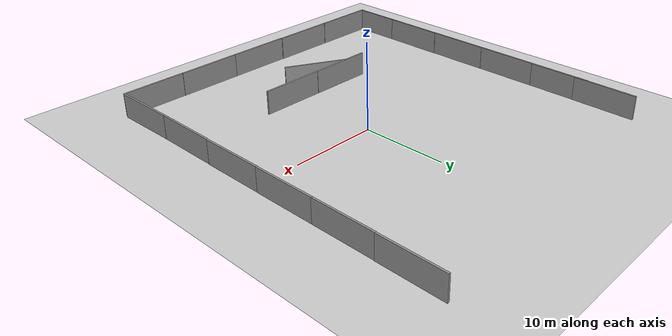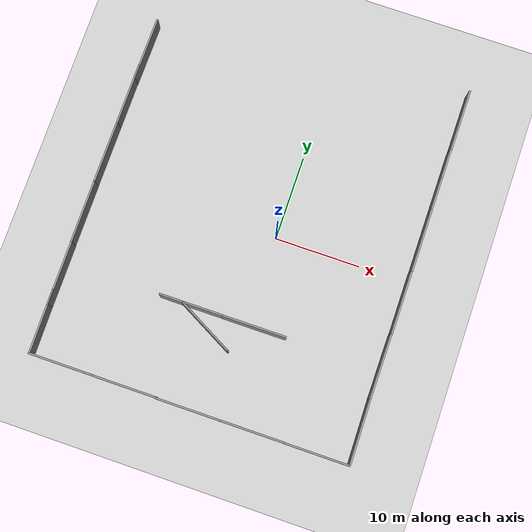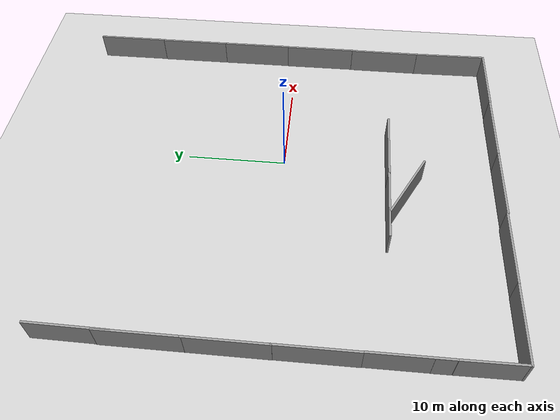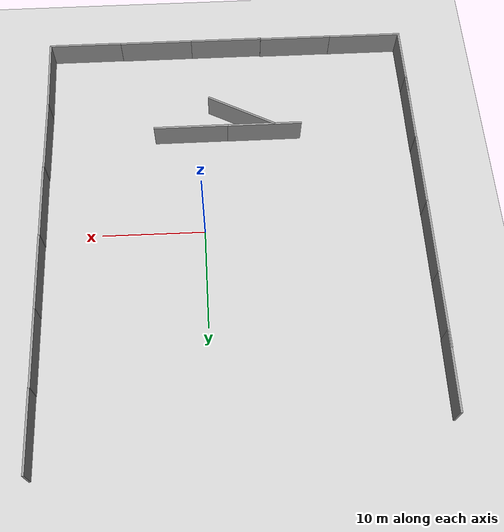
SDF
<sdf version="1.4">
 <world name="default">
  <model name="ground_plane">
   <static>1</static>
   <link name="link">
    <collision name="collision">
     <geometry><plane><normal>0 0 1</normal><size>100 100</size></plane></geometry>
     <surface><friction><ode><mu>100</mu><mu2>50</mu2></ode></friction></surface>
    </collision>
    <visual name="visual">
     <cast_shadows>0</cast_shadows>
     <geometry><plane><normal>0 0 1</normal><size>100 100</size></plane></geometry>
     <material>
      <script><uri>file://media/materials/scripts/gazebo.material</uri><name>Gazebo/Grey</name></script>
     </material>
    </visual>
    <velocity_decay><linear>0</linear><angular>0</angular></velocity_decay>
   </link>
  </model>
  <model name="grey_wall_0">
   <static>1</static>
   <link name="link">
    <pose>0 0 1.4 0 -0 0</pose>
    <collision name="collision"><geometry><box><size>7.5 0.2 2.8</size></box></geometry></collision>
    <visual name="visual">
     <cast_shadows>0</cast_shadows>
     <geometry><box><size>7.5 0.2 2.8</size></box></geometry>
     <material>
      <script>
       <uri>model://grey_wall/materials/scripts</uri>
       <uri>model://grey_wall/materials/textures</uri>
       <name>vrc/grey_wall</name>
      </script>
     </material>
    </visual>
    <velocity_decay><linear>0</linear><angular>0</angular></velocity_decay>
   </link>
   <pose>11.9495 -21.5417 0 0 -0 0</pose>
  </model>
  <model name="grey_wall_1">
   <static>1</static>
   <link name="link">
    <pose>0 0 1.4 0 -0 0</pose>
    <collision name="collision"><geometry><box><size>7.5 0.2 2.8</size></box></geometry></collision>
    <visual name="visual">
     <cast_shadows>0</cast_shadows>
     <geometry><box><size>7.5 0.2 2.8</size></box></geometry>
     <material>
      <script>
       <uri>model://grey_wall/materials/scripts</uri>
       <uri>model://grey_wall/materials/textures</uri>
       <name>vrc/grey_wall</name>
      </script>
     </material>
    </visual>
    <velocity_decay><linear>0</linear><angular>0</angular></velocity_decay>
   </link>
   <pose>4.46115 -21.5125 0 0 -0 0</pose>
  </model>
  <model name="grey_wall_2">
   <static>1</static>
   <link name="link">
    <pose>0 0 1.4 0 -0 0</pose>
    <collision name="collision"><geometry><box><size>7.5 0.2 2.8</size></box></geometry></collision>
    <visual name="visual">
     <cast_shadows>0</cast_shadows>
     <geometry><box><size>7.5 0.2 2.8</size></box></geometry>
     <material>
      <script>
       <uri>model://grey_wall/materials/scripts</uri>
       <uri>model://grey_wall/materials/textures</uri>
       <name>vrc/grey_wall</name>
      </script>
     </material>
    </visual>
    <velocity_decay><linear>0</linear><angular>0</angular></velocity_decay>
   </link>
   <pose>-3 -21.5146 0 0 -0 0</pose>
  </model>
  <model name="grey_wall_3">
   <static>1</static>
   <link name="link">
    <pose>0 0 1.4 0 -0 0</pose>
    <collision name="collision"><geometry><box><size>7.5 0.2 2.8</size></box></geometry></collision>
    <visual name="visual">
     <cast_shadows>0</cast_shadows>
     <geometry><box><size>7.5 0.2 2.8</size></box></geometry>
     <material>
      <script>
       <uri>model://grey_wall/materials/scripts</uri>
       <uri>model://grey_wall/materials/textures</uri>
       <name>vrc/grey_wall</name>
      </script>
     </material>
    </visual>
    <velocity_decay><linear>0</linear><angular>0</angular></velocity_decay>
   </link>
   <pose>-10.457 -21.4428 0 0 -0 0</pose>
  </model>
  <model name="grey_wall_4">
   <static>1</static>
   <link name="link">
    <pose>0 0 1.4 0 -0 0</pose>
    <collision name="collision"><geometry><box><size>7.5 0.2 2.8</size></box></geometry></collision>
    <visual name="visual">
     <cast_shadows>0</cast_shadows>
     <geometry><box><size>7.5 0.2 2.8</size></box></geometry>
     <material>
      <script>
       <uri>model://grey_wall/materials/scripts</uri>
       <uri>model://grey_wall/materials/textures</uri>
       <name>vrc/grey_wall</name>
      </script>
     </material>
    </visual>
    <velocity_decay><linear>0</linear><angular>0</angular></velocity_decay>
   </link>
   <pose>-17.8741 -21.4252 0 0 -0 0</pose>
  </model>
  <model name="grey_wall_6">
   <static>1</static>
   <link name="link">
    <pose>0 0 1.4 0 -0 0</pose>
    <collision name="collision"><geometry><box><size>7.5 0.2 2.8</size></box></geometry></collision>
    <visual name="visual">
     <cast_shadows>0</cast_shadows>
     <geometry><box><size>7.5 0.2 2.8</size></box></geometry>
     <material>
      <script>
       <uri>model://grey_wall/materials/scripts</uri>
       <uri>model://grey_wall/materials/textures</uri>
       <name>vrc/grey_wall</name>
      </script>
     </material>
    </visual>
    <velocity_decay><linear>0</linear><angular>0</angular></velocity_decay>
   </link>
   <pose>15.6069 -17.7328 0 0 -0 1.58364</pose>
  </model>
  <model name="grey_wall_7">
   <static>1</static>
   <link name="link">
    <pose>0 0 1.4 0 -0 0</pose>
    <collision name="collision"><geometry><box><size>7.5 0.2 2.8</size></box></geometry></collision>
    <visual name="visual">
     <cast_shadows>0</cast_shadows>
     <geometry><box><size>7.5 0.2 2.8</size></box></geometry>
     <material>
      <script>
       <uri>model://grey_wall/materials/scripts</uri>
       <uri>model://grey_wall/materials/textures</uri>
       <name>vrc/grey_wall</name>
      </script>
     </material>
    </visual>
    <velocity_decay><linear>0</linear><angular>0</angular></velocity_decay>
   </link>
   <pose>15.5792 -10.2805 0 0 0 -1.5757</pose>
  </model>
  <model name="grey_wall_8">
   <static>1</static>
   <link name="link">
    <pose>0 0 1.4 0 -0 0</pose>
    <collision name="collision"><geometry><box><size>7.5 0.2 2.8</size></box></geometry></collision>
    <visual name="visual">
     <cast_shadows>0</cast_shadows>
     <geometry><box><size>7.5 0.2 2.8</size></box></geometry>
     <material>
      <script>
       <uri>model://grey_wall/materials/scripts</uri>
       <uri>model://grey_wall/materials/textures</uri>
       <name>vrc/grey_wall</name>
      </script>
     </material>
    </visual>
    <velocity_decay><linear>0</linear><angular>0</angular></velocity_decay>
   </link>
   <pose>15.6357 -2.80636 0 0 0 -1.57048</pose>
  </model>
  <model name="grey_wall_9">
   <static>1</static>
   <link name="link">
    <pose>0 0 1.4 0 -0 0</pose>
    <collision name="collision"><geometry><box><size>7.5 0.2 2.8</size></box></geometry></collision>
    <visual name="visual">
     <cast_shadows>0</cast_shadows>
     <geometry><box><size>7.5 0.2 2.8</size></box></geometry>
     <material>
      <script>
       <uri>model://grey_wall/materials/scripts</uri>
       <uri>model://grey_wall/materials/textures</uri>
       <name>vrc/grey_wall</name>
      </script>
     </material>
    </visual>
    <velocity_decay><linear>0</linear><angular>0</angular></velocity_decay>
   </link>
   <pose>15.6626 4.62392 0 0 0 -1.57072</pose>
  </model>
  <model name="grey_wall_10">
   <static>1</static>
   <link name="link">
    <pose>0 0 1.4 0 -0 0</pose>
    <collision name="collision"><geometry><box><size>7.5 0.2 2.8</size></box></geometry></collision>
    <visual name="visual">
     <cast_shadows>0</cast_shadows>
     <geometry><box><size>7.5 0.2 2.8</size></box></geometry>
     <material>
      <script>
       <uri>model://grey_wall/materials/scripts</uri>
       <uri>model://grey_wall/materials/textures</uri>
       <name>vrc/grey_wall</name>
      </script>
     </material>
    </visual>
    <velocity_decay><linear>0</linear><angular>0</angular></velocity_decay>
   </link>
   <pose>15.665 11.9925 -0 0 0 -1.57143</pose>
  </model>
  <model name="grey_wall_13">
   <static>1</static>
   <link name="link">
    <pose>0 0 1.4 0 -0 0</pose>
    <collision name="collision"><geometry><box><size>7.5 0.2 2.8</size></box></geometry></collision>
    <visual name="visual">
     <cast_shadows>0</cast_shadows>
     <geometry><box><size>7.5 0.2 2.8</size></box></geometry>
     <material>
      <script>
       <uri>model://grey_wall/materials/scripts</uri>
       <uri>model://grey_wall/materials/textures</uri>
       <name>vrc/grey_wall</name>
      </script>
     </material>
    </visual>
    <velocity_decay><linear>0</linear><angular>0</angular></velocity_decay>
   </link>
   <pose>15.7093 19.4176 0 0 0 -1.57249</pose>
  </model>
  <model name="grey_wall_15">
   <static>1</static>
   <link name="link">
    <pose>0 0 1.4 0 -0 0</pose>
    <collision name="collision"><geometry><box><size>7.5 0.2 2.8</size></box></geometry></collision>
    <visual name="visual">
     <cast_shadows>0</cast_shadows>
     <geometry><box><size>7.5 0.2 2.8</size></box></geometry>
     <material>
      <script>
       <uri>model://grey_wall/materials/scripts</uri>
       <uri>model://grey_wall/materials/textures</uri>
       <name>vrc/grey_wall</name>
      </script>
     </material>
    </visual>
    <velocity_decay><linear>0</linear><angular>0</angular></velocity_decay>
   </link>
   <pose>-21.5248 -17.7015 0 0 0 -1.56656</pose>
  </model>
  <model name="grey_wall_16">
   <static>1</static>
   <link name="link">
    <pose>0 0 1.4 0 -0 0</pose>
    <collision name="collision"><geometry><box><size>7.5 0.2 2.8</size></box></geometry></collision>
    <visual name="visual">
     <cast_shadows>0</cast_shadows>
     <geometry><box><size>7.5 0.2 2.8</size></box></geometry>
     <material>
      <script>
       <uri>model://grey_wall/materials/scripts</uri>
       <uri>model://grey_wall/materials/textures</uri>
       <name>vrc/grey_wall</name>
      </script>
     </material>
    </visual>
    <velocity_decay><linear>0</linear><angular>0</angular></velocity_decay>
   </link>
   <pose>-21.5208 -12 0 0 0 -1.57415</pose>
  </model>
  <model name="grey_wall_17">
   <static>1</static>
   <link name="link">
    <pose>0 0 1.4 0 -0 0</pose>
    <collision name="collision"><geometry><box><size>7.5 0.2 2.8</size></box></geometry></collision>
    <visual name="visual">
     <cast_shadows>0</cast_shadows>
     <geometry><box><size>7.5 0.2 2.8</size></box></geometry>
     <material>
      <script>
       <uri>model://grey_wall/materials/scripts</uri>
       <uri>model://grey_wall/materials/textures</uri>
       <name>vrc/grey_wall</name>
      </script>
     </material>
    </visual>
    <velocity_decay><linear>0</linear><angular>0</angular></velocity_decay>
   </link>
   <pose>-21.5209 -4.59777 0 0 0 -1.57509</pose>
  </model>
  <model name="grey_wall_18">
   <static>1</static>
   <link name="link">
    <pose>0 0 1.4 0 -0 0</pose>
    <collision name="collision"><geometry><box><size>7.5 0.2 2.8</size></box></geometry></collision>
    <visual name="visual">
     <cast_shadows>0</cast_shadows>
     <geometry><box><size>7.5 0.2 2.8</size></box></geometry>
     <material>
      <script>
       <uri>model://grey_wall/materials/scripts</uri>
       <uri>model://grey_wall/materials/textures</uri>
       <name>vrc/grey_wall</name>
      </script>
     </material>
    </visual>
    <velocity_decay><linear>0</linear><angular>0</angular></velocity_decay>
   </link>
   <pose>-21.497 2.74679 0 0 0 -1.57722</pose>
  </model>
  <model name="grey_wall_19">
   <static>1</static>
   <link name="link">
    <pose>0 0 1.4 0 -0 0</pose>
    <collision name="collision"><geometry><box><size>7.5 0.2 2.8</size></box></geometry></collision>
    <visual name="visual">
     <cast_shadows>0</cast_shadows>
     <geometry><box><size>7.5 0.2 2.8</size></box></geometry>
     <material>
      <script>
       <uri>model://grey_wall/materials/scripts</uri>
       <uri>model://grey_wall/materials/textures</uri>
       <name>vrc/grey_wall</name>
      </script>
     </material>
    </visual>
    <velocity_decay><linear>0</linear><angular>0</angular></velocity_decay>
   </link>
   <pose>-21.452 10.0969 0 0 0 -1.57666</pose>
  </model>
  <model name="grey_wall_27">
   <static>1</static>
   <link name="link">
    <pose>0 0 1.4 0 -0 0</pose>
    <collision name="collision"><geometry><box><size>7.5 0.2 2.8</size></box></geometry></collision>
    <visual name="visual">
     <cast_shadows>0</cast_shadows>
     <geometry><box><size>7.5 0.2 2.8</size></box></geometry>
     <material>
      <script>
       <uri>model://grey_wall/materials/scripts</uri>
       <uri>model://grey_wall/materials/textures</uri>
       <name>vrc/grey_wall</name>
      </script>
     </material>
    </visual>
    <velocity_decay><linear>0</linear><angular>0</angular></velocity_decay>
   </link>
   <pose>-21.3576 15.9306 5e-06 0.00456 2e-06 -1.58472</pose>
  </model>
  <model name="grey_wall_34">
   <static>1</static>
   <link name="link">
    <pose>0 0 1.4 0 -0 0</pose>
    <collision name="collision"><geometry><box><size>7.5 0.2 2.8</size></box></geometry></collision>
    <visual name="visual">
     <cast_shadows>0</cast_shadows>
     <geometry><box><size>7.5 0.2 2.8</size></box></geometry>
     <material>
      <script>
       <uri>model://grey_wall/materials/scripts</uri>
       <uri>model://grey_wall/materials/textures</uri>
       <name>vrc/grey_wall</name>
      </script>
     </material>
    </visual>
    <velocity_decay><linear>0</linear><angular>0</angular></velocity_decay>
   </link>
   <pose>1 -10.5945 0 0 -0 0</pose>
  </model>
  <model name="grey_wall_35">
   <static>1</static>
   <link name="link">
    <pose>0 0 1.4 0 -0 0</pose>
    <collision name="collision"><geometry><box><size>7.5 0.2 2.8</size></box></geometry></collision>
    <visual name="visual">
     <cast_shadows>0</cast_shadows>
     <geometry><box><size>7.5 0.2 2.8</size></box></geometry>
     <material>
      <script>
       <uri>model://grey_wall/materials/scripts</uri>
       <uri>model://grey_wall/materials/textures</uri>
       <name>vrc/grey_wall</name>
      </script>
     </material>
    </visual>
    <velocity_decay><linear>0</linear><angular>0</angular></velocity_decay>
   </link>
   <pose>-6.44344 -10.58 0 0 -0 0</pose>
  </model>
  <model name="grey_wall_37">
   <static>1</static>
   <link name="link">
    <pose>0 0 1.4 0 -0 0</pose>
    <collision name="collision"><geometry><box><size>7.5 0.2 2.8</size></box></geometry></collision>
    <visual name="visual">
     <cast_shadows>0</cast_shadows>
     <geometry><box><size>7.5 0.2 2.8</size></box></geometry>
     <material>
      <script>
       <uri>model://grey_wall/materials/scripts</uri>
       <uri>model://grey_wall/materials/textures</uri>
       <name>vrc/grey_wall</name>
      </script>
     </material>
    </visual>
    <velocity_decay><linear>0</linear><angular>0</angular></velocity_decay>
   </link>
   <pose>-4.19444 -12.3503 -0 0 0 -0.491643</pose>
  </model>
 </world>
</sdf>
